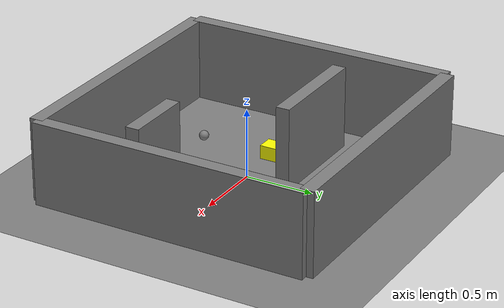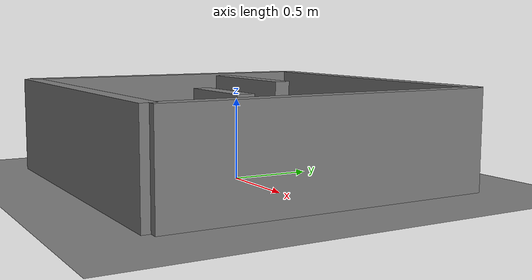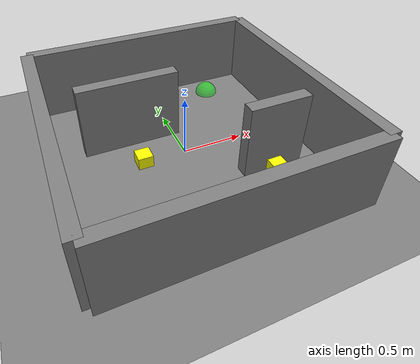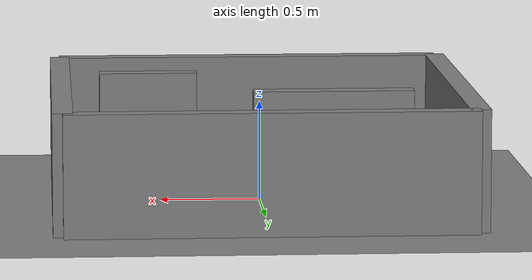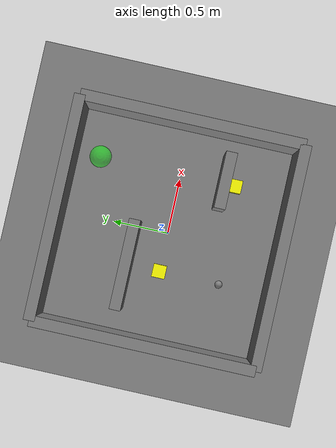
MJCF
<?xml version="1.0"?>
<mujoco model="stuck_after_motion_fixture">
  <option cone="elliptic" integrator="RK4" timestep="0.01"/>
  <default>
    <geom density="1"/>
  </default>
  <worldbody>
    <geom name="floor" type="plane" size="0 0 0.05" friction="0.5 0.005 0.001" condim="4"/>
    <body name="walls">
      <geom name="wall_1" type="box" pos="-1 0 0.3" size="0.05 1 0.3"/>
      <geom name="wall_2" type="box" pos="1 0 0.3" size="0.05 1 0.3"/>
      <geom name="wall_3" type="box" pos="0 -1 0.3" size="1 0.05 0.3"/>
      <geom name="wall_4" type="box" pos="0 1 0.3" size="1 0.05 0.3"/>
      <!-- stops obstacle_1_movable after it has travelled -->
      <geom name="block_a" type="box" pos="-0.35 0.30 0.3" size="0.40 0.05 0.3"/>
      <!-- already touching obstacle_2_movable -->
      <geom name="block_b" type="box" pos="0.55 -0.39 0.3" size="0.25 0.05 0.3"/>
    </body>
    <body name="robot">
      <joint name="joint_x" type="slide" axis="1 0 0"/>
      <joint name="joint_y" type="slide" axis="0 1 0"/>
      <geom name="robot" type="sphere" pos="-0.35 -0.55 0.035" size="0.035" mass="5" friction="1 0.005 0.0001" condim="4"/>
    </body>
    <body name="obstacle_1_movable">
      <joint type="free"/>
      <geom name="obstacle_1_movable" type="box" pos="-0.35 0.0 0.05" size="0.06 0.06 0.05" mass="0.1" friction="0 0.005 0.001" condim="4" rgba="1 1 0 1"/>
    </body>
    <body name="obstacle_2_movable">
      <joint type="free"/>
      <geom name="obstacle_2_movable" type="box" pos="0.55 -0.50 0.05" size="0.06 0.06 0.05" mass="0.1" friction="0 0.005 0.001" condim="4" rgba="1 1 0 1"/>
    </body>
    <site name="goal" type="sphere" pos="0.55 0.75 0" size="0.1" rgba="0 1 0 0.5"/>
  </worldbody>
  <actuator>
    <velocity name="actuator_x" joint="joint_x" kv="50" ctrlrange="-0.5 0.5" forcerange="-20 20"/>
    <velocity name="actuator_y" joint="joint_y" kv="50" ctrlrange="-0.5 0.5" forcerange="-20 20"/>
  </actuator>
</mujoco>
